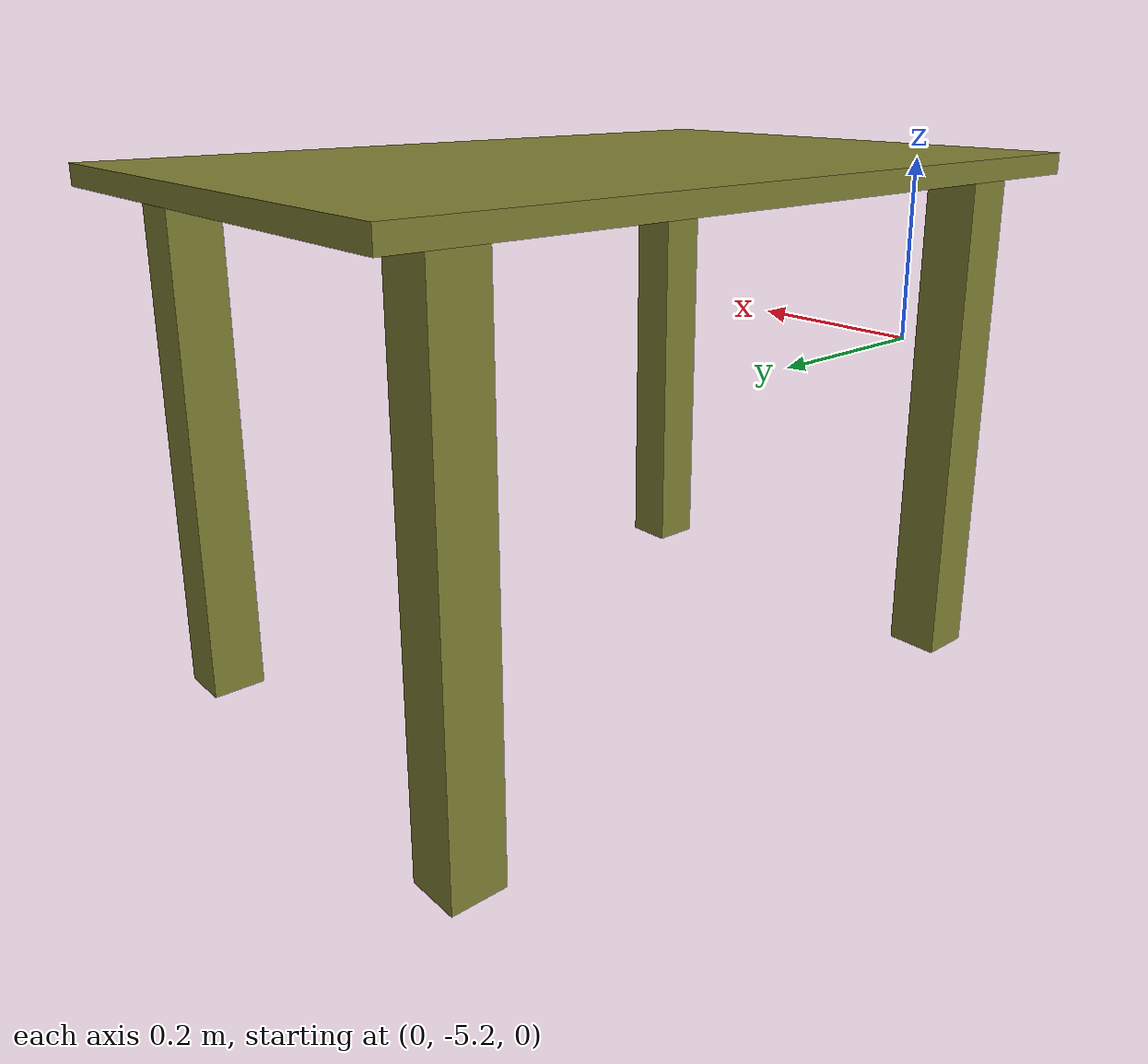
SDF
<?xml version='1.0'?>
<sdf version='1.6'>
  <model name='my_table'>
    <link name='link_0'>
      <pose frame=''>0.072072 -4.79324 0.208333 0 -0 0</pose>
      <inertial>
        <mass>1</mass>
        <inertia>
          <ixx>0.166667</ixx>
          <ixy>0</ixy>
          <ixz>0</ixz>
          <iyy>0.166667</iyy>
          <iyz>0</iyz>
          <izz>0.166667</izz>
        </inertia>
        <pose frame=''>0 0 0 0 -0 0</pose>
      </inertial>
      <self_collide>0</self_collide>
      <kinematic>0</kinematic>
      <gravity>1</gravity>
      <visual name='visual'>
        <pose frame=''>0 0 0 0 -0 0</pose>
        <geometry>
          <box>
            <size>0.5 0.75 0.02</size>
          </box>
        </geometry>
        <material>
          <lighting>1</lighting>
          <script>
            <uri>file://media/materials/scripts/gazebo.material</uri>
            <name>Gazebo/Grey</name>
          </script>
          <shader type='pixel'>
            <normal_map>__default__</normal_map>
          </shader>
          <ambient>0.5 0.5 0.2 1</ambient>
          <diffuse>0.5 0.5 0.2 1</diffuse>
          <specular>0.01 0.01 0.01 1</specular>
          <emissive>0 0 0 1</emissive>
        </material>
        <transparency>0</transparency>
        <cast_shadows>1</cast_shadows>
      </visual>
      <collision name='collision'>
        <laser_retro>0</laser_retro>
        <max_contacts>10</max_contacts>
        <pose frame=''>0 0 0 0 -0 0</pose>
        <geometry>
          <box>
            <size>0.5 0.75 0.02</size>
          </box>
        </geometry>
        <surface>
          <friction>
            <ode>
              <mu>1</mu>
              <mu2>1</mu2>
              <fdir1>0 0 0</fdir1>
              <slip1>0</slip1>
              <slip2>0</slip2>
            </ode>
            <torsional>
              <coefficient>1</coefficient>
              <patch_radius>0</patch_radius>
              <surface_radius>0</surface_radius>
              <use_patch_radius>1</use_patch_radius>
              <ode>
                <slip>0</slip>
              </ode>
            </torsional>
          </friction>
          <bounce>
            <restitution_coefficient>0</restitution_coefficient>
            <threshold>1e+06</threshold>
          </bounce>
          <contact>
            <collide_without_contact>0</collide_without_contact>
            <collide_without_contact_bitmask>1</collide_without_contact_bitmask>
            <collide_bitmask>1</collide_bitmask>
            <ode>
              <soft_cfm>0</soft_cfm>
              <soft_erp>0.2</soft_erp>
              <kp>1e+13</kp>
              <kd>1</kd>
              <max_vel>0.01</max_vel>
              <min_depth>0</min_depth>
            </ode>
            <bullet>
              <split_impulse>1</split_impulse>
              <split_impulse_penetration_threshold>-0.01</split_impulse_penetration_threshold>
              <soft_cfm>0</soft_cfm>
              <soft_erp>0.2</soft_erp>
              <kp>1e+13</kp>
              <kd>1</kd>
            </bullet>
          </contact>
        </surface>
      </collision>
    </link>
    <link name='link_0_clone'>
      <pose frame=''>0.272072 -4.49324 -0.041667 0 -0 0</pose>
      <inertial>
        <mass>1</mass>
        <inertia>
          <ixx>0.166667</ixx>
          <ixy>0</ixy>
          <ixz>0</ixz>
          <iyy>0.166667</iyy>
          <iyz>0</iyz>
          <izz>0.166667</izz>
        </inertia>
        <pose frame=''>0 0 0 0 -0 0</pose>
      </inertial>
      <self_collide>0</self_collide>
      <kinematic>0</kinematic>
      <gravity>1</gravity>
      <visual name='visual'>
        <pose frame=''>0 0 0 0 -0 0</pose>
        <geometry>
          <box>
            <size>0.05 0.05 0.49</size>
          </box>
        </geometry>
        <material>
          <lighting>1</lighting>
          <script>
            <uri>file://media/materials/scripts/gazebo.material</uri>
            <name>Gazebo/Grey</name>
          </script>
          <shader type='pixel'>
            <normal_map>__default__</normal_map>
          </shader>
          <ambient>0.5 0.5 0.2 1</ambient>
          <diffuse>0.5 0.5 0.2 1</diffuse>
          <specular>0.01 0.01 0.01 1</specular>
          <emissive>0 0 0 1</emissive>
        </material>
        <transparency>0</transparency>
        <cast_shadows>1</cast_shadows>
      </visual>
      <collision name='collision'>
        <laser_retro>0</laser_retro>
        <max_contacts>10</max_contacts>
        <pose frame=''>0 0 0 0 -0 0</pose>
        <geometry>
          <box>
            <size>0.05 0.05 0.49</size>
          </box>
        </geometry>
        <surface>
          <friction>
            <ode>
              <mu>1</mu>
              <mu2>1</mu2>
              <fdir1>0 0 0</fdir1>
              <slip1>0</slip1>
              <slip2>0</slip2>
            </ode>
            <torsional>
              <coefficient>1</coefficient>
              <patch_radius>0</patch_radius>
              <surface_radius>0</surface_radius>
              <use_patch_radius>1</use_patch_radius>
              <ode>
                <slip>0</slip>
              </ode>
            </torsional>
          </friction>
          <bounce>
            <restitution_coefficient>0</restitution_coefficient>
            <threshold>1e+06</threshold>
          </bounce>
          <contact>
            <collide_without_contact>0</collide_without_contact>
            <collide_without_contact_bitmask>1</collide_without_contact_bitmask>
            <collide_bitmask>1</collide_bitmask>
            <ode>
              <soft_cfm>0</soft_cfm>
              <soft_erp>0.2</soft_erp>
              <kp>1e+13</kp>
              <kd>1</kd>
              <max_vel>0.01</max_vel>
              <min_depth>0</min_depth>
            </ode>
            <bullet>
              <split_impulse>1</split_impulse>
              <split_impulse_penetration_threshold>-0.01</split_impulse_penetration_threshold>
              <soft_cfm>0</soft_cfm>
              <soft_erp>0.2</soft_erp>
              <kp>1e+13</kp>
              <kd>1</kd>
            </bullet>
          </contact>
        </surface>
      </collision>
    </link>
    <link name='link_0_clone_clone_0'>
      <pose frame=''>-0.127928 -4.49324 -0.041667 0 -0 0</pose>
      <inertial>
        <mass>1</mass>
        <inertia>
          <ixx>0.166667</ixx>
          <ixy>0</ixy>
          <ixz>0</ixz>
          <iyy>0.166667</iyy>
          <iyz>0</iyz>
          <izz>0.166667</izz>
        </inertia>
        <pose frame=''>0 0 0 0 -0 0</pose>
      </inertial>
      <self_collide>0</self_collide>
      <kinematic>0</kinematic>
      <gravity>1</gravity>
      <visual name='visual'>
        <pose frame=''>0 0 0 0 -0 0</pose>
        <geometry>
          <box>
            <size>0.05 0.05 0.49</size>
          </box>
        </geometry>
        <material>
          <lighting>1</lighting>
          <script>
            <uri>file://media/materials/scripts/gazebo.material</uri>
            <name>Gazebo/Grey</name>
          </script>
          <shader type='pixel'>
            <normal_map>__default__</normal_map>
          </shader>
          <ambient>0.5 0.5 0.2 1</ambient>
          <diffuse>0.5 0.5 0.2 1</diffuse>
          <specular>0.01 0.01 0.01 1</specular>
          <emissive>0 0 0 1</emissive>
        </material>
        <transparency>0</transparency>
        <cast_shadows>1</cast_shadows>
      </visual>
      <collision name='collision'>
        <laser_retro>0</laser_retro>
        <max_contacts>10</max_contacts>
        <pose frame=''>0 0 0 0 -0 0</pose>
        <geometry>
          <box>
            <size>0.05 0.05 0.49</size>
          </box>
        </geometry>
        <surface>
          <friction>
            <ode>
              <mu>1</mu>
              <mu2>1</mu2>
              <fdir1>0 0 0</fdir1>
              <slip1>0</slip1>
              <slip2>0</slip2>
            </ode>
            <torsional>
              <coefficient>1</coefficient>
              <patch_radius>0</patch_radius>
              <surface_radius>0</surface_radius>
              <use_patch_radius>1</use_patch_radius>
              <ode>
                <slip>0</slip>
              </ode>
            </torsional>
          </friction>
          <bounce>
            <restitution_coefficient>0</restitution_coefficient>
            <threshold>1e+06</threshold>
          </bounce>
          <contact>
            <collide_without_contact>0</collide_without_contact>
            <collide_without_contact_bitmask>1</collide_without_contact_bitmask>
            <collide_bitmask>1</collide_bitmask>
            <ode>
              <soft_cfm>0</soft_cfm>
              <soft_erp>0.2</soft_erp>
              <kp>1e+13</kp>
              <kd>1</kd>
              <max_vel>0.01</max_vel>
              <min_depth>0</min_depth>
            </ode>
            <bullet>
              <split_impulse>1</split_impulse>
              <split_impulse_penetration_threshold>-0.01</split_impulse_penetration_threshold>
              <soft_cfm>0</soft_cfm>
              <soft_erp>0.2</soft_erp>
              <kp>1e+13</kp>
              <kd>1</kd>
            </bullet>
          </contact>
        </surface>
      </collision>
    </link>
    <link name='link_0_clone_clone_1'>
      <pose frame=''>0.272072 -5.09324 -0.041667 0 -0 0</pose>
      <inertial>
        <mass>1</mass>
        <inertia>
          <ixx>0.166667</ixx>
          <ixy>0</ixy>
          <ixz>0</ixz>
          <iyy>0.166667</iyy>
          <iyz>0</iyz>
          <izz>0.166667</izz>
        </inertia>
        <pose frame=''>0 0 0 0 -0 0</pose>
      </inertial>
      <self_collide>0</self_collide>
      <kinematic>0</kinematic>
      <gravity>1</gravity>
      <visual name='visual'>
        <pose frame=''>0 0 0 0 -0 0</pose>
        <geometry>
          <box>
            <size>0.05 0.05 0.49</size>
          </box>
        </geometry>
        <material>
          <lighting>1</lighting>
          <script>
            <uri>file://media/materials/scripts/gazebo.material</uri>
            <name>Gazebo/Grey</name>
          </script>
          <shader type='pixel'>
            <normal_map>__default__</normal_map>
          </shader>
          <ambient>0.5 0.5 0.2 1</ambient>
          <diffuse>0.5 0.5 0.2 1</diffuse>
          <specular>0.01 0.01 0.01 1</specular>
          <emissive>0 0 0 1</emissive>
        </material>
        <transparency>0</transparency>
        <cast_shadows>1</cast_shadows>
      </visual>
      <collision name='collision'>
        <laser_retro>0</laser_retro>
        <max_contacts>10</max_contacts>
        <pose frame=''>0 0 0 0 -0 0</pose>
        <geometry>
          <box>
            <size>0.05 0.05 0.49</size>
          </box>
        </geometry>
        <surface>
          <friction>
            <ode>
              <mu>1</mu>
              <mu2>1</mu2>
              <fdir1>0 0 0</fdir1>
              <slip1>0</slip1>
              <slip2>0</slip2>
            </ode>
            <torsional>
              <coefficient>1</coefficient>
              <patch_radius>0</patch_radius>
              <surface_radius>0</surface_radius>
              <use_patch_radius>1</use_patch_radius>
              <ode>
                <slip>0</slip>
              </ode>
            </torsional>
          </friction>
          <bounce>
            <restitution_coefficient>0</restitution_coefficient>
            <threshold>1e+06</threshold>
          </bounce>
          <contact>
            <collide_without_contact>0</collide_without_contact>
            <collide_without_contact_bitmask>1</collide_without_contact_bitmask>
            <collide_bitmask>1</collide_bitmask>
            <ode>
              <soft_cfm>0</soft_cfm>
              <soft_erp>0.2</soft_erp>
              <kp>1e+13</kp>
              <kd>1</kd>
              <max_vel>0.01</max_vel>
              <min_depth>0</min_depth>
            </ode>
            <bullet>
              <split_impulse>1</split_impulse>
              <split_impulse_penetration_threshold>-0.01</split_impulse_penetration_threshold>
              <soft_cfm>0</soft_cfm>
              <soft_erp>0.2</soft_erp>
              <kp>1e+13</kp>
              <kd>1</kd>
            </bullet>
          </contact>
        </surface>
      </collision>
    </link>
    <link name='link_0_clone_clone_2'>
      <pose frame=''>-0.127928 -5.09324 -0.041667 0 -0 0</pose>
      <inertial>
        <mass>1</mass>
        <inertia>
          <ixx>0.166667</ixx>
          <ixy>0</ixy>
          <ixz>0</ixz>
          <iyy>0.166667</iyy>
          <iyz>0</iyz>
          <izz>0.166667</izz>
        </inertia>
        <pose frame=''>0 0 0 0 -0 0</pose>
      </inertial>
      <self_collide>0</self_collide>
      <kinematic>0</kinematic>
      <gravity>1</gravity>
      <visual name='visual'>
        <pose frame=''>0 0 0 0 -0 0</pose>
        <geometry>
          <box>
            <size>0.05 0.05 0.49</size>
          </box>
        </geometry>
        <material>
          <lighting>1</lighting>
          <script>
            <uri>file://media/materials/scripts/gazebo.material</uri>
            <name>Gazebo/Grey</name>
          </script>
          <shader type='pixel'>
            <normal_map>__default__</normal_map>
          </shader>
          <ambient>0.5 0.5 0.2 1</ambient>
          <diffuse>0.5 0.5 0.2 1</diffuse>
          <specular>0.01 0.01 0.01 1</specular>
          <emissive>0 0 0 1</emissive>
        </material>
        <transparency>0</transparency>
        <cast_shadows>1</cast_shadows>
      </visual>
      <collision name='collision'>
        <laser_retro>0</laser_retro>
        <max_contacts>10</max_contacts>
        <pose frame=''>0 0 0 0 -0 0</pose>
        <geometry>
          <box>
            <size>0.05 0.05 0.49</size>
          </box>
        </geometry>
        <surface>
          <friction>
            <ode>
              <mu>1</mu>
              <mu2>1</mu2>
              <fdir1>0 0 0</fdir1>
              <slip1>0</slip1>
              <slip2>0</slip2>
            </ode>
            <torsional>
              <coefficient>1</coefficient>
              <patch_radius>0</patch_radius>
              <surface_radius>0</surface_radius>
              <use_patch_radius>1</use_patch_radius>
              <ode>
                <slip>0</slip>
              </ode>
            </torsional>
          </friction>
          <bounce>
            <restitution_coefficient>0</restitution_coefficient>
            <threshold>1e+06</threshold>
          </bounce>
          <contact>
            <collide_without_contact>0</collide_without_contact>
            <collide_without_contact_bitmask>1</collide_without_contact_bitmask>
            <collide_bitmask>1</collide_bitmask>
            <ode>
              <soft_cfm>0</soft_cfm>
              <soft_erp>0.2</soft_erp>
              <kp>1e+13</kp>
              <kd>1</kd>
              <max_vel>0.01</max_vel>
              <min_depth>0</min_depth>
            </ode>
            <bullet>
              <split_impulse>1</split_impulse>
              <split_impulse_penetration_threshold>-0.01</split_impulse_penetration_threshold>
              <soft_cfm>0</soft_cfm>
              <soft_erp>0.2</soft_erp>
              <kp>1e+13</kp>
              <kd>1</kd>
            </bullet>
          </contact>
        </surface>
      </collision>
    </link>
    <joint name='link_0_JOINT_4' type='fixed'>
      <parent>link_0</parent>
      <child>link_0_clone</child>
      <pose frame=''>0 0 0 0 -0 0</pose>
      <physics>
        <ode>
          <limit>
            <cfm>0</cfm>
            <erp>0.2</erp>
          </limit>
          <suspension>
            <cfm>0</cfm>
            <erp>0.2</erp>
          </suspension>
        </ode>
      </physics>
    </joint>
    <joint name='link_0_JOINT_5' type='fixed'>
      <parent>link_0</parent>
      <child>link_0_clone_clone_0</child>
      <pose frame=''>0 0 0 0 -0 0</pose>
      <physics>
        <ode>
          <limit>
            <cfm>0</cfm>
            <erp>0.2</erp>
          </limit>
          <suspension>
            <cfm>0</cfm>
            <erp>0.2</erp>
          </suspension>
        </ode>
      </physics>
    </joint>
    <joint name='link_0_JOINT_6' type='fixed'>
      <parent>link_0</parent>
      <child>link_0_clone_clone_1</child>
      <pose frame=''>0 0 0 0 -0 0</pose>
      <physics>
        <ode>
          <limit>
            <cfm>0</cfm>
            <erp>0.2</erp>
          </limit>
          <suspension>
            <cfm>0</cfm>
            <erp>0.2</erp>
          </suspension>
        </ode>
      </physics>
    </joint>
    <joint name='link_0_JOINT_7' type='fixed'>
      <parent>link_0</parent>
      <child>link_0_clone_clone_2</child>
      <pose frame=''>0 0 0 0 -0 0</pose>
      <physics>
        <ode>
          <limit>
            <cfm>0</cfm>
            <erp>0.2</erp>
          </limit>
          <suspension>
            <cfm>0</cfm>
            <erp>0.2</erp>
          </suspension>
        </ode>
      </physics>
    </joint>
    <static>0</static>
    <allow_auto_disable>1</allow_auto_disable>
  </model>
</sdf>
